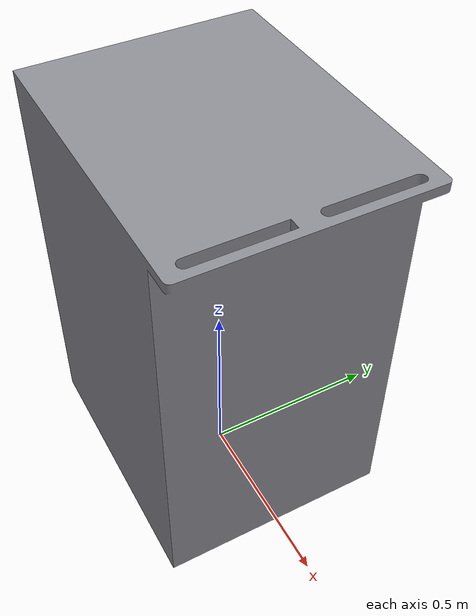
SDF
<?xml version="1.0"?>
<sdf version="1.9">
  <model name="room314_charging_ergotron">
    <static>true</static>
    <link name="room314_charging_ergotron_link">
      <visual name="room314_charging_ergotron_visual">
        <pose>-0.4125 -0.32 0 0 0 0</pose>
        <geometry>
          <mesh>
            <uri>model://room314_charging_ergotron/meshes/charging_ergotron.stl</uri>
          </mesh>
        </geometry>
        <material>
          <ambient>0.55 0.55 0.58 1.0</ambient>
          <diffuse>0.55 0.55 0.58 1.0</diffuse>
          <specular>0.20 0.20 0.20 1.0</specular>
          <emissive>0.0 0.0 0.0 0.0</emissive>
        </material>
      </visual>
      <collision name="room314_charging_ergotron_collision">
        <pose>-0.4125 -0.32 0 0 0 0</pose>
        <geometry>
          <mesh>
            <uri>model://room314_charging_ergotron/meshes/charging_ergotron.stl</uri>
          </mesh>
        </geometry>
      </collision>
    </link>
  </model>
</sdf>
